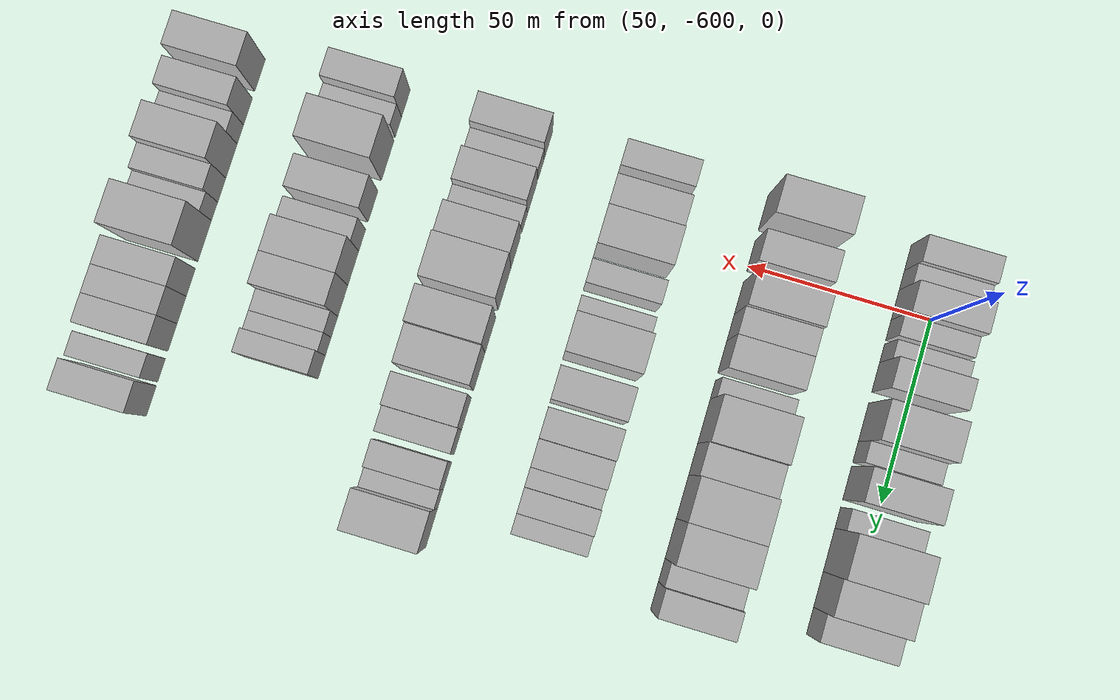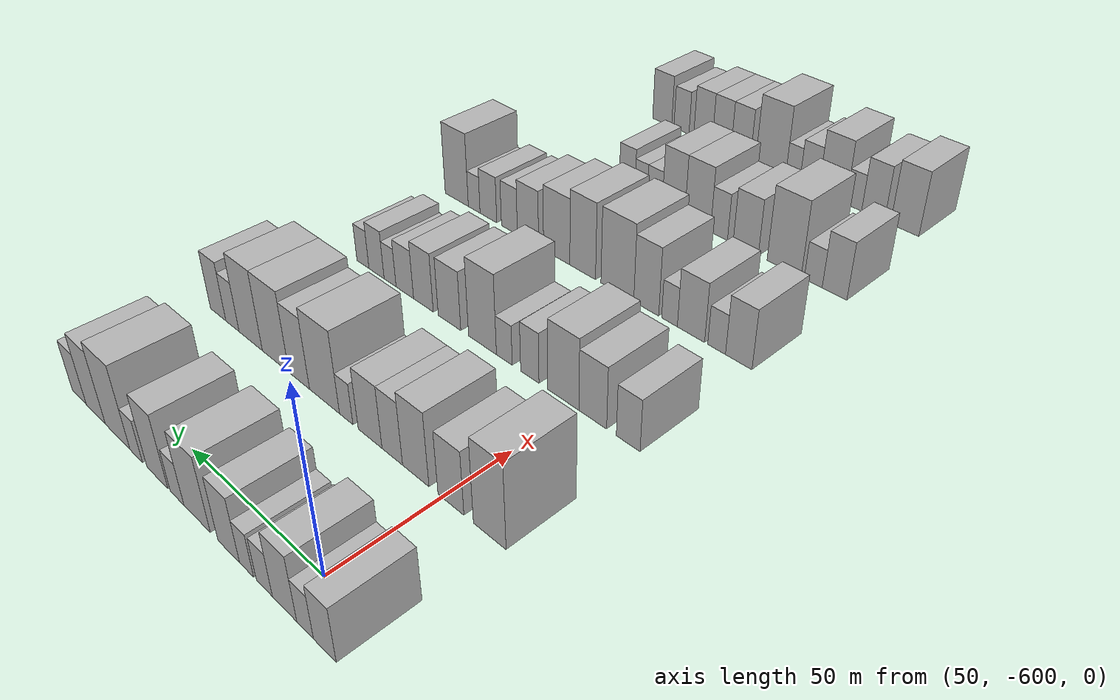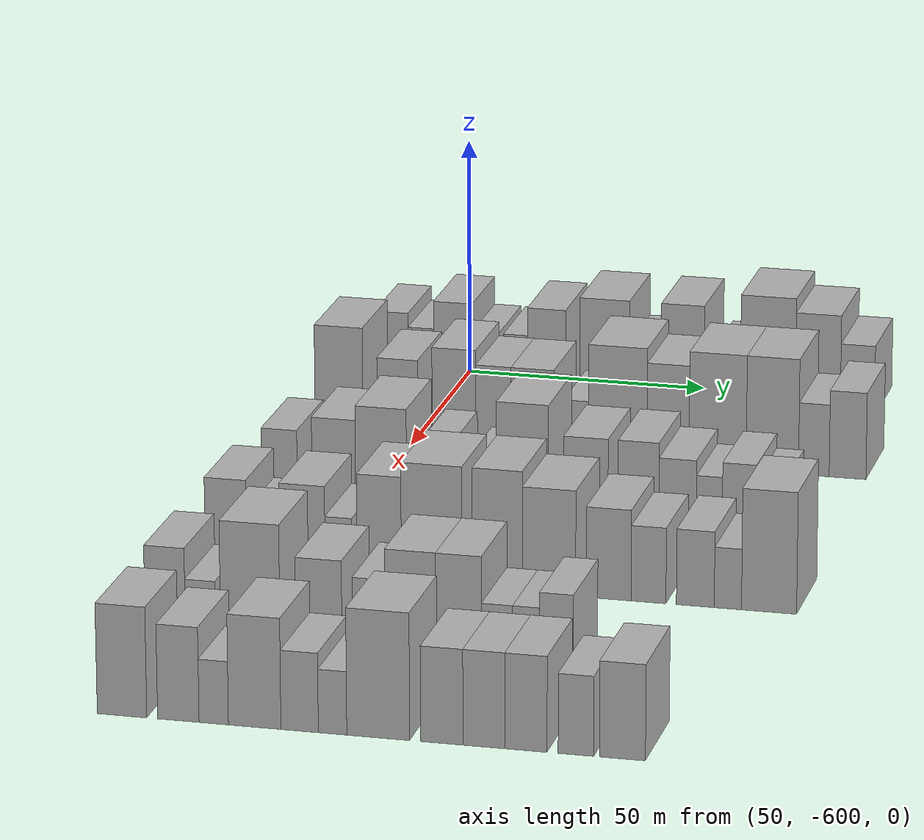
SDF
<sdf version="1.6">
 <world name="default">
  <model name="building_1">
   <static>1</static>
   <pose>50.0000 -614.4001 0 0.000000 0.000000 0.000000</pose>
   <link name="link">
    <pose>0 0 7.50 0 0 0</pose>
    <collision name="collision"><geometry><box><size>20.0000 7.1998 15.0000</size></box></geometry></collision>
    <visual name="visual">
     <cast_shadows>0</cast_shadows>
     <geometry><box><size>20.0000 7.1998 15.0000</size></box></geometry>
     <material>
      <script>
       <uri>model://HANNAS_wall/materials/scripts</uri>
       <uri>model://HANNAS_wall/materials/textures</uri>
       <name>vrc/HANNAS_wall</name>
      </script>
     </material>
    </visual>
   </link>
  </model>
  <model name="building_2">
   <static>1</static>
   <pose>50.0000 -608.0700 0 0.000000 0.000000 0.000000</pose>
   <link name="link">
    <pose>0 0 6.00 0 0 0</pose>
    <collision name="collision"><geometry><box><size>20.0000 5.4605 12.0000</size></box></geometry></collision>
    <visual name="visual">
     <cast_shadows>0</cast_shadows>
     <geometry><box><size>20.0000 5.4605 12.0000</size></box></geometry>
     <material>
      <script>
       <uri>model://HANNAS_wall/materials/scripts</uri>
       <uri>model://HANNAS_wall/materials/textures</uri>
       <name>vrc/HANNAS_wall</name>
      </script>
     </material>
    </visual>
   </link>
  </model>
  <model name="building_3">
   <static>1</static>
   <pose>50.0000 -601.2058 0 0.000000 0.000000 0.000000</pose>
   <link name="link">
    <pose>0 0 9.00 0 0 0</pose>
    <collision name="collision"><geometry><box><size>20.0000 8.2679 18.0000</size></box></geometry></collision>
    <visual name="visual">
     <cast_shadows>0</cast_shadows>
     <geometry><box><size>20.0000 8.2679 18.0000</size></box></geometry>
     <material>
      <script>
       <uri>model://HANNAS_wall/materials/scripts</uri>
       <uri>model://HANNAS_wall/materials/textures</uri>
       <name>vrc/HANNAS_wall</name>
      </script>
     </material>
    </visual>
   </link>
  </model>
  <model name="building_4">
   <static>1</static>
   <pose>50.0000 -594.2463 0 0.000000 0.000000 0.000000</pose>
   <link name="link">
    <pose>0 0 6.00 0 0 0</pose>
    <collision name="collision"><geometry><box><size>20.0000 5.6510 12.0000</size></box></geometry></collision>
    <visual name="visual">
     <cast_shadows>0</cast_shadows>
     <geometry><box><size>20.0000 5.6510 12.0000</size></box></geometry>
     <material>
      <script>
       <uri>model://HANNAS_wall/materials/scripts</uri>
       <uri>model://HANNAS_wall/materials/textures</uri>
       <name>vrc/HANNAS_wall</name>
      </script>
     </material>
    </visual>
   </link>
  </model>
  <model name="building_5">
   <static>1</static>
   <pose>50.0000 -587.8788 0 0.000000 0.000000 0.000000</pose>
   <link name="link">
    <pose>0 0 6.00 0 0 0</pose>
    <collision name="collision"><geometry><box><size>20.0000 5.0839 12.0000</size></box></geometry></collision>
    <visual name="visual">
     <cast_shadows>0</cast_shadows>
     <geometry><box><size>20.0000 5.0839 12.0000</size></box></geometry>
     <material>
      <script>
       <uri>model://HANNAS_wall/materials/scripts</uri>
       <uri>model://HANNAS_wall/materials/textures</uri>
       <name>vrc/HANNAS_wall</name>
      </script>
     </material>
    </visual>
   </link>
  </model>
  <model name="building_6">
   <static>1</static>
   <pose>50.0000 -581.2737 0 0.000000 0.000000 0.000000</pose>
   <link name="link">
    <pose>0 0 9.00 0 0 0</pose>
    <collision name="collision"><geometry><box><size>20.0000 8.1263 18.0000</size></box></geometry></collision>
    <visual name="visual">
     <cast_shadows>0</cast_shadows>
     <geometry><box><size>20.0000 8.1263 18.0000</size></box></geometry>
     <material>
      <script>
       <uri>model://HANNAS_wall/materials/scripts</uri>
       <uri>model://HANNAS_wall/materials/textures</uri>
       <name>vrc/HANNAS_wall</name>
      </script>
     </material>
    </visual>
   </link>
  </model>
  <model name="building_7">
   <static>1</static>
   <pose>50.0000 -568.9651 0 0.000000 0.000000 0.000000</pose>
   <link name="link">
    <pose>0 0 10.50 0 0 0</pose>
    <collision name="collision"><geometry><box><size>20.0000 10.4911 21.0000</size></box></geometry></collision>
    <visual name="visual">
     <cast_shadows>0</cast_shadows>
     <geometry><box><size>20.0000 10.4911 21.0000</size></box></geometry>
     <material>
      <script>
       <uri>model://HANNAS_wall/materials/scripts</uri>
       <uri>model://HANNAS_wall/materials/textures</uri>
       <name>vrc/HANNAS_wall</name>
      </script>
     </material>
    </visual>
   </link>
  </model>
  <model name="building_8">
   <static>1</static>
   <pose>50.0000 -560.8816 0 0.000000 0.000000 0.000000</pose>
   <link name="link">
    <pose>0 0 6.00 0 0 0</pose>
    <collision name="collision"><geometry><box><size>20.0000 5.6758 12.0000</size></box></geometry></collision>
    <visual name="visual">
     <cast_shadows>0</cast_shadows>
     <geometry><box><size>20.0000 5.6758 12.0000</size></box></geometry>
     <material>
      <script>
       <uri>model://HANNAS_wall/materials/scripts</uri>
       <uri>model://HANNAS_wall/materials/textures</uri>
       <name>vrc/HANNAS_wall</name>
      </script>
     </material>
    </visual>
   </link>
  </model>
  <model name="building_9">
   <static>1</static>
   <pose>50.0000 -552.5371 0 0.000000 0.000000 0.000000</pose>
   <link name="link">
    <pose>0 0 10.50 0 0 0</pose>
    <collision name="collision"><geometry><box><size>20.0000 9.0132 21.0000</size></box></geometry></collision>
    <visual name="visual">
     <cast_shadows>0</cast_shadows>
     <geometry><box><size>20.0000 9.0132 21.0000</size></box></geometry>
     <material>
      <script>
       <uri>model://HANNAS_wall/materials/scripts</uri>
       <uri>model://HANNAS_wall/materials/textures</uri>
       <name>vrc/HANNAS_wall</name>
      </script>
     </material>
    </visual>
   </link>
  </model>
  <model name="building_10">
   <static>1</static>
   <pose>50.0000 -543.2090 0 0.000000 0.000000 0.000000</pose>
   <link name="link">
    <pose>0 0 6.00 0 0 0</pose>
    <collision name="collision"><geometry><box><size>20.0000 5.6430 12.0000</size></box></geometry></collision>
    <visual name="visual">
     <cast_shadows>0</cast_shadows>
     <geometry><box><size>20.0000 5.6430 12.0000</size></box></geometry>
     <material>
      <script>
       <uri>model://HANNAS_wall/materials/scripts</uri>
       <uri>model://HANNAS_wall/materials/textures</uri>
       <name>vrc/HANNAS_wall</name>
      </script>
     </material>
    </visual>
   </link>
  </model>
  <model name="building_11">
   <static>1</static>
   <pose>50.0000 -534.6300 0 0.000000 0.000000 0.000000</pose>
   <link name="link">
    <pose>0 0 12.00 0 0 0</pose>
    <collision name="collision"><geometry><box><size>20.0000 11.5151 24.0000</size></box></geometry></collision>
    <visual name="visual">
     <cast_shadows>0</cast_shadows>
     <geometry><box><size>20.0000 11.5151 24.0000</size></box></geometry>
     <material>
      <script>
       <uri>model://HANNAS_wall/materials/scripts</uri>
       <uri>model://HANNAS_wall/materials/textures</uri>
       <name>vrc/HANNAS_wall</name>
      </script>
     </material>
    </visual>
   </link>
  </model>
  <model name="building_12">
   <static>1</static>
   <pose>50.0000 -524.1794 0 0.000000 0.000000 0.000000</pose>
   <link name="link">
    <pose>0 0 10.50 0 0 0</pose>
    <collision name="collision"><geometry><box><size>20.0000 9.3861 21.0000</size></box></geometry></collision>
    <visual name="visual">
     <cast_shadows>0</cast_shadows>
     <geometry><box><size>20.0000 9.3861 21.0000</size></box></geometry>
     <material>
      <script>
       <uri>model://HANNAS_wall/materials/scripts</uri>
       <uri>model://HANNAS_wall/materials/textures</uri>
       <name>vrc/HANNAS_wall</name>
      </script>
     </material>
    </visual>
   </link>
  </model>
  <model name="building_13">
   <static>1</static>
   <pose>50.0000 -515.9298 0 0.000000 0.000000 0.000000</pose>
   <link name="link">
    <pose>0 0 7.50 0 0 0</pose>
    <collision name="collision"><geometry><box><size>20.0000 7.1131 15.0000</size></box></geometry></collision>
    <visual name="visual">
     <cast_shadows>0</cast_shadows>
     <geometry><box><size>20.0000 7.1131 15.0000</size></box></geometry>
     <material>
      <script>
       <uri>model://HANNAS_wall/materials/scripts</uri>
       <uri>model://HANNAS_wall/materials/textures</uri>
       <name>vrc/HANNAS_wall</name>
      </script>
     </material>
    </visual>
   </link>
  </model>
  <model name="building_142">
   <static>1</static>
   <pose>90.0000 -615.0041 0 0.000000 0.000000 0.000000</pose>
   <link name="link">
    <pose>0 0 12.00 0 0 0</pose>
    <collision name="collision"><geometry><box><size>20.0000 9.9919 24.0000</size></box></geometry></collision>
    <visual name="visual">
     <cast_shadows>0</cast_shadows>
     <geometry><box><size>20.0000 9.9919 24.0000</size></box></geometry>
     <material>
      <script>
       <uri>model://HANNAS_wall/materials/scripts</uri>
       <uri>model://HANNAS_wall/materials/textures</uri>
       <name>vrc/HANNAS_wall</name>
      </script>
     </material>
    </visual>
   </link>
  </model>
  <model name="building_143">
   <static>1</static>
   <pose>90.0000 -602.7949 0 0.000000 0.000000 0.000000</pose>
   <link name="link">
    <pose>0 0 9.00 0 0 0</pose>
    <collision name="collision"><geometry><box><size>20.0000 8.4265 18.0000</size></box></geometry></collision>
    <visual name="visual">
     <cast_shadows>0</cast_shadows>
     <geometry><box><size>20.0000 8.4265 18.0000</size></box></geometry>
     <material>
      <script>
       <uri>model://HANNAS_wall/materials/scripts</uri>
       <uri>model://HANNAS_wall/materials/textures</uri>
       <name>vrc/HANNAS_wall</name>
      </script>
     </material>
    </visual>
   </link>
  </model>
  <model name="building_144">
   <static>1</static>
   <pose>90.0000 -591.0546 0 0.000000 0.000000 0.000000</pose>
   <link name="link">
    <pose>0 0 10.50 0 0 0</pose>
    <collision name="collision"><geometry><box><size>20.0000 9.0541 21.0000</size></box></geometry></collision>
    <visual name="visual">
     <cast_shadows>0</cast_shadows>
     <geometry><box><size>20.0000 9.0541 21.0000</size></box></geometry>
     <material>
      <script>
       <uri>model://HANNAS_wall/materials/scripts</uri>
       <uri>model://HANNAS_wall/materials/textures</uri>
       <name>vrc/HANNAS_wall</name>
      </script>
     </material>
    </visual>
   </link>
  </model>
  <model name="building_145">
   <static>1</static>
   <pose>90.0000 -582.8657 0 0.000000 0.000000 0.000000</pose>
   <link name="link">
    <pose>0 0 9.00 0 0 0</pose>
    <collision name="collision"><geometry><box><size>20.0000 7.3236 18.0000</size></box></geometry></collision>
    <visual name="visual">
     <cast_shadows>0</cast_shadows>
     <geometry><box><size>20.0000 7.3236 18.0000</size></box></geometry>
     <material>
      <script>
       <uri>model://HANNAS_wall/materials/scripts</uri>
       <uri>model://HANNAS_wall/materials/textures</uri>
       <name>vrc/HANNAS_wall</name>
      </script>
     </material>
    </visual>
   </link>
  </model>
  <model name="building_146">
   <static>1</static>
   <pose>90.0000 -574.8054 0 0.000000 0.000000 0.000000</pose>
   <link name="link">
    <pose>0 0 9.00 0 0 0</pose>
    <collision name="collision"><geometry><box><size>20.0000 8.7971 18.0000</size></box></geometry></collision>
    <visual name="visual">
     <cast_shadows>0</cast_shadows>
     <geometry><box><size>20.0000 8.7971 18.0000</size></box></geometry>
     <material>
      <script>
       <uri>model://HANNAS_wall/materials/scripts</uri>
       <uri>model://HANNAS_wall/materials/textures</uri>
       <name>vrc/HANNAS_wall</name>
      </script>
     </material>
    </visual>
   </link>
  </model>
  <model name="building_147">
   <static>1</static>
   <pose>90.0000 -565.8265 0 0.000000 0.000000 0.000000</pose>
   <link name="link">
    <pose>0 0 6.00 0 0 0</pose>
    <collision name="collision"><geometry><box><size>20.0000 5.1607 12.0000</size></box></geometry></collision>
    <visual name="visual">
     <cast_shadows>0</cast_shadows>
     <geometry><box><size>20.0000 5.1607 12.0000</size></box></geometry>
     <material>
      <script>
       <uri>model://HANNAS_wall/materials/scripts</uri>
       <uri>model://HANNAS_wall/materials/textures</uri>
       <name>vrc/HANNAS_wall</name>
      </script>
     </material>
    </visual>
   </link>
  </model>
  <model name="building_148">
   <static>1</static>
   <pose>90.0000 -557.2463 0 0.000000 0.000000 0.000000</pose>
   <link name="link">
    <pose>0 0 12.00 0 0 0</pose>
    <collision name="collision"><geometry><box><size>20.0000 11.9997 24.0000</size></box></geometry></collision>
    <visual name="visual">
     <cast_shadows>0</cast_shadows>
     <geometry><box><size>20.0000 11.9997 24.0000</size></box></geometry>
     <material>
      <script>
       <uri>model://HANNAS_wall/materials/scripts</uri>
       <uri>model://HANNAS_wall/materials/textures</uri>
       <name>vrc/HANNAS_wall</name>
      </script>
     </material>
    </visual>
   </link>
  </model>
  <model name="building_149">
   <static>1</static>
   <pose>90.0000 -546.9539 0 0.000000 0.000000 0.000000</pose>
   <link name="link">
    <pose>0 0 10.50 0 0 0</pose>
    <collision name="collision"><geometry><box><size>20.0000 8.5851 21.0000</size></box></geometry></collision>
    <visual name="visual">
     <cast_shadows>0</cast_shadows>
     <geometry><box><size>20.0000 8.5851 21.0000</size></box></geometry>
     <material>
      <script>
       <uri>model://HANNAS_wall/materials/scripts</uri>
       <uri>model://HANNAS_wall/materials/textures</uri>
       <name>vrc/HANNAS_wall</name>
      </script>
     </material>
    </visual>
   </link>
  </model>
  <model name="building_150">
   <static>1</static>
   <pose>90.0000 -536.8525 0 0.000000 0.000000 0.000000</pose>
   <link name="link">
    <pose>0 0 12.00 0 0 0</pose>
    <collision name="collision"><geometry><box><size>20.0000 11.6178 24.0000</size></box></geometry></collision>
    <visual name="visual">
     <cast_shadows>0</cast_shadows>
     <geometry><box><size>20.0000 11.6178 24.0000</size></box></geometry>
     <material>
      <script>
       <uri>model://HANNAS_wall/materials/scripts</uri>
       <uri>model://HANNAS_wall/materials/textures</uri>
       <name>vrc/HANNAS_wall</name>
      </script>
     </material>
    </visual>
   </link>
  </model>
  <model name="building_151">
   <static>1</static>
   <pose>90.0000 -525.7332 0 0.000000 0.000000 0.000000</pose>
   <link name="link">
    <pose>0 0 12.00 0 0 0</pose>
    <collision name="collision"><geometry><box><size>20.0000 10.6209 24.0000</size></box></geometry></collision>
    <visual name="visual">
     <cast_shadows>0</cast_shadows>
     <geometry><box><size>20.0000 10.6209 24.0000</size></box></geometry>
     <material>
      <script>
       <uri>model://HANNAS_wall/materials/scripts</uri>
       <uri>model://HANNAS_wall/materials/textures</uri>
       <name>vrc/HANNAS_wall</name>
      </script>
     </material>
    </visual>
   </link>
  </model>
  <model name="building_152">
   <static>1</static>
   <pose>90.0000 -517.3188 0 0.000000 0.000000 0.000000</pose>
   <link name="link">
    <pose>0 0 7.50 0 0 0</pose>
    <collision name="collision"><geometry><box><size>20.0000 6.2080 15.0000</size></box></geometry></collision>
    <visual name="visual">
     <cast_shadows>0</cast_shadows>
     <geometry><box><size>20.0000 6.2080 15.0000</size></box></geometry>
     <material>
      <script>
       <uri>model://HANNAS_wall/materials/scripts</uri>
       <uri>model://HANNAS_wall/materials/textures</uri>
       <name>vrc/HANNAS_wall</name>
      </script>
     </material>
    </visual>
   </link>
  </model>
  <model name="building_153">
   <static>1</static>
   <pose>90.0000 -510.4953 0 0.000000 0.000000 0.000000</pose>
   <link name="link">
    <pose>0 0 9.00 0 0 0</pose>
    <collision name="collision"><geometry><box><size>20.0000 7.4389 18.0000</size></box></geometry></collision>
    <visual name="visual">
     <cast_shadows>0</cast_shadows>
     <geometry><box><size>20.0000 7.4389 18.0000</size></box></geometry>
     <material>
      <script>
       <uri>model://HANNAS_wall/materials/scripts</uri>
       <uri>model://HANNAS_wall/materials/textures</uri>
       <name>vrc/HANNAS_wall</name>
      </script>
     </material>
    </visual>
   </link>
  </model>
  <model name="building_278">
   <static>1</static>
   <pose>130.0000 -616.3946 0 0.000000 0.000000 0.000000</pose>
   <link name="link">
    <pose>0 0 7.50 0 0 0</pose>
    <collision name="collision"><geometry><box><size>20.0000 7.2108 15.0000</size></box></geometry></collision>
    <visual name="visual">
     <cast_shadows>0</cast_shadows>
     <geometry><box><size>20.0000 7.2108 15.0000</size></box></geometry>
     <material>
      <script>
       <uri>model://HANNAS_wall/materials/scripts</uri>
       <uri>model://HANNAS_wall/materials/textures</uri>
       <name>vrc/HANNAS_wall</name>
      </script>
     </material>
    </visual>
   </link>
  </model>
  <model name="building_279">
   <static>1</static>
   <pose>130.0000 -605.3771 0 0.000000 0.000000 0.000000</pose>
   <link name="link">
    <pose>0 0 9.00 0 0 0</pose>
    <collision name="collision"><geometry><box><size>20.0000 8.8242 18.0000</size></box></geometry></collision>
    <visual name="visual">
     <cast_shadows>0</cast_shadows>
     <geometry><box><size>20.0000 8.8242 18.0000</size></box></geometry>
     <material>
      <script>
       <uri>model://HANNAS_wall/materials/scripts</uri>
       <uri>model://HANNAS_wall/materials/textures</uri>
       <name>vrc/HANNAS_wall</name>
      </script>
     </material>
    </visual>
   </link>
  </model>
  <model name="building_280">
   <static>1</static>
   <pose>130.0000 -595.8070 0 0.000000 0.000000 0.000000</pose>
   <link name="link">
    <pose>0 0 10.50 0 0 0</pose>
    <collision name="collision"><geometry><box><size>20.0000 10.3159 21.0000</size></box></geometry></collision>
    <visual name="visual">
     <cast_shadows>0</cast_shadows>
     <geometry><box><size>20.0000 10.3159 21.0000</size></box></geometry>
     <material>
      <script>
       <uri>model://HANNAS_wall/materials/scripts</uri>
       <uri>model://HANNAS_wall/materials/textures</uri>
       <name>vrc/HANNAS_wall</name>
      </script>
     </material>
    </visual>
   </link>
  </model>
  <model name="building_281">
   <static>1</static>
   <pose>130.0000 -584.4604 0 0.000000 0.000000 0.000000</pose>
   <link name="link">
    <pose>0 0 7.50 0 0 0</pose>
    <collision name="collision"><geometry><box><size>20.0000 6.3774 15.0000</size></box></geometry></collision>
    <visual name="visual">
     <cast_shadows>0</cast_shadows>
     <geometry><box><size>20.0000 6.3774 15.0000</size></box></geometry>
     <material>
      <script>
       <uri>model://HANNAS_wall/materials/scripts</uri>
       <uri>model://HANNAS_wall/materials/textures</uri>
       <name>vrc/HANNAS_wall</name>
      </script>
     </material>
    </visual>
   </link>
  </model>
  <model name="building_282">
   <static>1</static>
   <pose>130.0000 -575.4166 0 0.000000 0.000000 0.000000</pose>
   <link name="link">
    <pose>0 0 6.00 0 0 0</pose>
    <collision name="collision"><geometry><box><size>20.0000 5.7101 12.0000</size></box></geometry></collision>
    <visual name="visual">
     <cast_shadows>0</cast_shadows>
     <geometry><box><size>20.0000 5.7101 12.0000</size></box></geometry>
     <material>
      <script>
       <uri>model://HANNAS_wall/materials/scripts</uri>
       <uri>model://HANNAS_wall/materials/textures</uri>
       <name>vrc/HANNAS_wall</name>
      </script>
     </material>
    </visual>
   </link>
  </model>
  <model name="building_283">
   <static>1</static>
   <pose>130.0000 -567.3604 0 0.000000 0.000000 0.000000</pose>
   <link name="link">
    <pose>0 0 12.00 0 0 0</pose>
    <collision name="collision"><geometry><box><size>20.0000 10.4022 24.0000</size></box></geometry></collision>
    <visual name="visual">
     <cast_shadows>0</cast_shadows>
     <geometry><box><size>20.0000 10.4022 24.0000</size></box></geometry>
     <material>
      <script>
       <uri>model://HANNAS_wall/materials/scripts</uri>
       <uri>model://HANNAS_wall/materials/textures</uri>
       <name>vrc/HANNAS_wall</name>
      </script>
     </material>
    </visual>
   </link>
  </model>
  <model name="building_284">
   <static>1</static>
   <pose>130.0000 -554.7339 0 0.000000 0.000000 0.000000</pose>
   <link name="link">
    <pose>0 0 9.00 0 0 0</pose>
    <collision name="collision"><geometry><box><size>20.0000 8.8509 18.0000</size></box></geometry></collision>
    <visual name="visual">
     <cast_shadows>0</cast_shadows>
     <geometry><box><size>20.0000 8.8509 18.0000</size></box></geometry>
     <material>
      <script>
       <uri>model://HANNAS_wall/materials/scripts</uri>
       <uri>model://HANNAS_wall/materials/textures</uri>
       <name>vrc/HANNAS_wall</name>
      </script>
     </material>
    </visual>
   </link>
  </model>
  <model name="building_285">
   <static>1</static>
   <pose>130.0000 -544.2658 0 0.000000 0.000000 0.000000</pose>
   <link name="link">
    <pose>0 0 9.00 0 0 0</pose>
    <collision name="collision"><geometry><box><size>20.0000 8.0853 18.0000</size></box></geometry></collision>
    <visual name="visual">
     <cast_shadows>0</cast_shadows>
     <geometry><box><size>20.0000 8.0853 18.0000</size></box></geometry>
     <material>
      <script>
       <uri>model://HANNAS_wall/materials/scripts</uri>
       <uri>model://HANNAS_wall/materials/textures</uri>
       <name>vrc/HANNAS_wall</name>
      </script>
     </material>
    </visual>
   </link>
  </model>
  <model name="building_286">
   <static>1</static>
   <pose>130.0000 -536.5265 0 0.000000 0.000000 0.000000</pose>
   <link name="link">
    <pose>0 0 7.50 0 0 0</pose>
    <collision name="collision"><geometry><box><size>20.0000 7.3934 15.0000</size></box></geometry></collision>
    <visual name="visual">
     <cast_shadows>0</cast_shadows>
     <geometry><box><size>20.0000 7.3934 15.0000</size></box></geometry>
     <material>
      <script>
       <uri>model://HANNAS_wall/materials/scripts</uri>
       <uri>model://HANNAS_wall/materials/textures</uri>
       <name>vrc/HANNAS_wall</name>
      </script>
     </material>
    </visual>
   </link>
  </model>
  <model name="building_287">
   <static>1</static>
   <pose>130.0000 -530.2504 0 0.000000 0.000000 0.000000</pose>
   <link name="link">
    <pose>0 0 6.00 0 0 0</pose>
    <collision name="collision"><geometry><box><size>20.0000 5.1588 12.0000</size></box></geometry></collision>
    <visual name="visual">
     <cast_shadows>0</cast_shadows>
     <geometry><box><size>20.0000 5.1588 12.0000</size></box></geometry>
     <material>
      <script>
       <uri>model://HANNAS_wall/materials/scripts</uri>
       <uri>model://HANNAS_wall/materials/textures</uri>
       <name>vrc/HANNAS_wall</name>
      </script>
     </material>
    </visual>
   </link>
  </model>
  <model name="building_288">
   <static>1</static>
   <pose>130.0000 -524.3204 0 0.000000 0.000000 0.000000</pose>
   <link name="link">
    <pose>0 0 7.50 0 0 0</pose>
    <collision name="collision"><geometry><box><size>20.0000 6.7013 15.0000</size></box></geometry></collision>
    <visual name="visual">
     <cast_shadows>0</cast_shadows>
     <geometry><box><size>20.0000 6.7013 15.0000</size></box></geometry>
     <material>
      <script>
       <uri>model://HANNAS_wall/materials/scripts</uri>
       <uri>model://HANNAS_wall/materials/textures</uri>
       <name>vrc/HANNAS_wall</name>
      </script>
     </material>
    </visual>
   </link>
  </model>
  <model name="building_289">
   <static>1</static>
   <pose>130.0000 -518.2611 0 0.000000 0.000000 0.000000</pose>
   <link name="link">
    <pose>0 0 6.00 0 0 0</pose>
    <collision name="collision"><geometry><box><size>20.0000 5.4174 12.0000</size></box></geometry></collision>
    <visual name="visual">
     <cast_shadows>0</cast_shadows>
     <geometry><box><size>20.0000 5.4174 12.0000</size></box></geometry>
     <material>
      <script>
       <uri>model://HANNAS_wall/materials/scripts</uri>
       <uri>model://HANNAS_wall/materials/textures</uri>
       <name>vrc/HANNAS_wall</name>
      </script>
     </material>
    </visual>
   </link>
  </model>
  <model name="building_407">
   <static>1</static>
   <pose>170.0000 -615.9316 0 0.000000 0.000000 0.000000</pose>
   <link name="link">
    <pose>0 0 9.00 0 0 0</pose>
    <collision name="collision"><geometry><box><size>20.0000 8.1367 18.0000</size></box></geometry></collision>
    <visual name="visual">
     <cast_shadows>0</cast_shadows>
     <geometry><box><size>20.0000 8.1367 18.0000</size></box></geometry>
     <material>
      <script>
       <uri>model://HANNAS_wall/materials/scripts</uri>
       <uri>model://HANNAS_wall/materials/textures</uri>
       <name>vrc/HANNAS_wall</name>
      </script>
     </material>
    </visual>
   </link>
  </model>
  <model name="building_408">
   <static>1</static>
   <pose>170.0000 -609.0600 0 0.000000 0.000000 0.000000</pose>
   <link name="link">
    <pose>0 0 6.00 0 0 0</pose>
    <collision name="collision"><geometry><box><size>20.0000 5.6067 12.0000</size></box></geometry></collision>
    <visual name="visual">
     <cast_shadows>0</cast_shadows>
     <geometry><box><size>20.0000 5.6067 12.0000</size></box></geometry>
     <material>
      <script>
       <uri>model://HANNAS_wall/materials/scripts</uri>
       <uri>model://HANNAS_wall/materials/textures</uri>
       <name>vrc/HANNAS_wall</name>
      </script>
     </material>
    </visual>
   </link>
  </model>
  <model name="building_409">
   <static>1</static>
   <pose>170.0000 -600.8036 0 0.000000 0.000000 0.000000</pose>
   <link name="link">
    <pose>0 0 9.00 0 0 0</pose>
    <collision name="collision"><geometry><box><size>20.0000 8.9061 18.0000</size></box></geometry></collision>
    <visual name="visual">
     <cast_shadows>0</cast_shadows>
     <geometry><box><size>20.0000 8.9061 18.0000</size></box></geometry>
     <material>
      <script>
       <uri>model://HANNAS_wall/materials/scripts</uri>
       <uri>model://HANNAS_wall/materials/textures</uri>
       <name>vrc/HANNAS_wall</name>
      </script>
     </material>
    </visual>
   </link>
  </model>
  <model name="building_410">
   <static>1</static>
   <pose>170.0000 -593.7107 0 0.000000 0.000000 0.000000</pose>
   <link name="link">
    <pose>0 0 6.00 0 0 0</pose>
    <collision name="collision"><geometry><box><size>20.0000 5.2797 12.0000</size></box></geometry></collision>
    <visual name="visual">
     <cast_shadows>0</cast_shadows>
     <geometry><box><size>20.0000 5.2797 12.0000</size></box></geometry>
     <material>
      <script>
       <uri>model://HANNAS_wall/materials/scripts</uri>
       <uri>model://HANNAS_wall/materials/textures</uri>
       <name>vrc/HANNAS_wall</name>
      </script>
     </material>
    </visual>
   </link>
  </model>
  <model name="building_411">
   <static>1</static>
   <pose>170.0000 -585.7439 0 0.000000 0.000000 0.000000</pose>
   <link name="link">
    <pose>0 0 10.50 0 0 0</pose>
    <collision name="collision"><geometry><box><size>20.0000 8.6539 21.0000</size></box></geometry></collision>
    <visual name="visual">
     <cast_shadows>0</cast_shadows>
     <geometry><box><size>20.0000 8.6539 21.0000</size></box></geometry>
     <material>
      <script>
       <uri>model://HANNAS_wall/materials/scripts</uri>
       <uri>model://HANNAS_wall/materials/textures</uri>
       <name>vrc/HANNAS_wall</name>
      </script>
     </material>
    </visual>
   </link>
  </model>
  <model name="building_412">
   <static>1</static>
   <pose>170.0000 -575.5004 0 0.000000 0.000000 0.000000</pose>
   <link name="link">
    <pose>0 0 12.00 0 0 0</pose>
    <collision name="collision"><geometry><box><size>20.0000 11.8331 24.0000</size></box></geometry></collision>
    <visual name="visual">
     <cast_shadows>0</cast_shadows>
     <geometry><box><size>20.0000 11.8331 24.0000</size></box></geometry>
     <material>
      <script>
       <uri>model://HANNAS_wall/materials/scripts</uri>
       <uri>model://HANNAS_wall/materials/textures</uri>
       <name>vrc/HANNAS_wall</name>
      </script>
     </material>
    </visual>
   </link>
  </model>
  <model name="building_413">
   <static>1</static>
   <pose>170.0000 -562.7300 0 0.000000 0.000000 0.000000</pose>
   <link name="link">
    <pose>0 0 12.00 0 0 0</pose>
    <collision name="collision"><geometry><box><size>20.0000 9.7076 24.0000</size></box></geometry></collision>
    <visual name="visual">
     <cast_shadows>0</cast_shadows>
     <geometry><box><size>20.0000 9.7076 24.0000</size></box></geometry>
     <material>
      <script>
       <uri>model://HANNAS_wall/materials/scripts</uri>
       <uri>model://HANNAS_wall/materials/textures</uri>
       <name>vrc/HANNAS_wall</name>
      </script>
     </material>
    </visual>
   </link>
  </model>
  <model name="building_414">
   <static>1</static>
   <pose>170.0000 -552.7162 0 0.000000 0.000000 0.000000</pose>
   <link name="link">
    <pose>0 0 10.50 0 0 0</pose>
    <collision name="collision"><geometry><box><size>20.0000 10.3201 21.0000</size></box></geometry></collision>
    <visual name="visual">
     <cast_shadows>0</cast_shadows>
     <geometry><box><size>20.0000 10.3201 21.0000</size></box></geometry>
     <material>
      <script>
       <uri>model://HANNAS_wall/materials/scripts</uri>
       <uri>model://HANNAS_wall/materials/textures</uri>
       <name>vrc/HANNAS_wall</name>
      </script>
     </material>
    </visual>
   </link>
  </model>
  <model name="building_415">
   <static>1</static>
   <pose>170.0000 -541.2158 0 0.000000 0.000000 0.000000</pose>
   <link name="link">
    <pose>0 0 9.00 0 0 0</pose>
    <collision name="collision"><geometry><box><size>20.0000 8.6806 18.0000</size></box></geometry></collision>
    <visual name="visual">
     <cast_shadows>0</cast_shadows>
     <geometry><box><size>20.0000 8.6806 18.0000</size></box></geometry>
     <material>
      <script>
       <uri>model://HANNAS_wall/materials/scripts</uri>
       <uri>model://HANNAS_wall/materials/textures</uri>
       <name>vrc/HANNAS_wall</name>
      </script>
     </material>
    </visual>
   </link>
  </model>
  <model name="building_416">
   <static>1</static>
   <pose>170.0000 -533.5246 0 0.000000 0.000000 0.000000</pose>
   <link name="link">
    <pose>0 0 7.50 0 0 0</pose>
    <collision name="collision"><geometry><box><size>20.0000 6.7018 15.0000</size></box></geometry></collision>
    <visual name="visual">
     <cast_shadows>0</cast_shadows>
     <geometry><box><size>20.0000 6.7018 15.0000</size></box></geometry>
     <material>
      <script>
       <uri>model://HANNAS_wall/materials/scripts</uri>
       <uri>model://HANNAS_wall/materials/textures</uri>
       <name>vrc/HANNAS_wall</name>
      </script>
     </material>
    </visual>
   </link>
  </model>
  <model name="building_417">
   <static>1</static>
   <pose>170.0000 -524.5462 0 0.000000 0.000000 0.000000</pose>
   <link name="link">
    <pose>0 0 7.50 0 0 0</pose>
    <collision name="collision"><geometry><box><size>20.0000 7.2549 15.0000</size></box></geometry></collision>
    <visual name="visual">
     <cast_shadows>0</cast_shadows>
     <geometry><box><size>20.0000 7.2549 15.0000</size></box></geometry>
     <material>
      <script>
       <uri>model://HANNAS_wall/materials/scripts</uri>
       <uri>model://HANNAS_wall/materials/textures</uri>
       <name>vrc/HANNAS_wall</name>
      </script>
     </material>
    </visual>
   </link>
  </model>
  <model name="building_418">
   <static>1</static>
   <pose>170.0000 -518.3212 0 0.000000 0.000000 0.000000</pose>
   <link name="link">
    <pose>0 0 6.00 0 0 0</pose>
    <collision name="collision"><geometry><box><size>20.0000 5.1952 12.0000</size></box></geometry></collision>
    <visual name="visual">
     <cast_shadows>0</cast_shadows>
     <geometry><box><size>20.0000 5.1952 12.0000</size></box></geometry>
     <material>
      <script>
       <uri>model://HANNAS_wall/materials/scripts</uri>
       <uri>model://HANNAS_wall/materials/textures</uri>
       <name>vrc/HANNAS_wall</name>
      </script>
     </material>
    </visual>
   </link>
  </model>
  <model name="building_419">
   <static>1</static>
   <pose>170.0000 -510.4748 0 0.000000 0.000000 0.000000</pose>
   <link name="link">
    <pose>0 0 12.00 0 0 0</pose>
    <collision name="collision"><geometry><box><size>20.0000 10.4976 24.0000</size></box></geometry></collision>
    <visual name="visual">
     <cast_shadows>0</cast_shadows>
     <geometry><box><size>20.0000 10.4976 24.0000</size></box></geometry>
     <material>
      <script>
       <uri>model://HANNAS_wall/materials/scripts</uri>
       <uri>model://HANNAS_wall/materials/textures</uri>
       <name>vrc/HANNAS_wall</name>
      </script>
     </material>
    </visual>
   </link>
  </model>
  <model name="building_532">
   <static>1</static>
   <pose>210.0000 -616.1358 0 0.000000 0.000000 0.000000</pose>
   <link name="link">
    <pose>0 0 9.00 0 0 0</pose>
    <collision name="collision"><geometry><box><size>20.0000 7.7285 18.0000</size></box></geometry></collision>
    <visual name="visual">
     <cast_shadows>0</cast_shadows>
     <geometry><box><size>20.0000 7.7285 18.0000</size></box></geometry>
     <material>
      <script>
       <uri>model://HANNAS_wall/materials/scripts</uri>
       <uri>model://HANNAS_wall/materials/textures</uri>
       <name>vrc/HANNAS_wall</name>
      </script>
     </material>
    </visual>
   </link>
  </model>
  <model name="building_533">
   <static>1</static>
   <pose>210.0000 -609.3839 0 0.000000 0.000000 0.000000</pose>
   <link name="link">
    <pose>0 0 6.00 0 0 0</pose>
    <collision name="collision"><geometry><box><size>20.0000 5.7753 12.0000</size></box></geometry></collision>
    <visual name="visual">
     <cast_shadows>0</cast_shadows>
     <geometry><box><size>20.0000 5.7753 12.0000</size></box></geometry>
     <material>
      <script>
       <uri>model://HANNAS_wall/materials/scripts</uri>
       <uri>model://HANNAS_wall/materials/textures</uri>
       <name>vrc/HANNAS_wall</name>
      </script>
     </material>
    </visual>
   </link>
  </model>
  <model name="building_534">
   <static>1</static>
   <pose>210.0000 -599.8304 0 0.000000 0.000000 0.000000</pose>
   <link name="link">
    <pose>0 0 12.00 0 0 0</pose>
    <collision name="collision"><geometry><box><size>20.0000 11.3317 24.0000</size></box></geometry></collision>
    <visual name="visual">
     <cast_shadows>0</cast_shadows>
     <geometry><box><size>20.0000 11.3317 24.0000</size></box></geometry>
     <material>
      <script>
       <uri>model://HANNAS_wall/materials/scripts</uri>
       <uri>model://HANNAS_wall/materials/textures</uri>
       <name>vrc/HANNAS_wall</name>
      </script>
     </material>
    </visual>
   </link>
  </model>
  <model name="building_535">
   <static>1</static>
   <pose>210.0000 -586.7701 0 0.000000 0.000000 0.000000</pose>
   <link name="link">
    <pose>0 0 9.00 0 0 0</pose>
    <collision name="collision"><geometry><box><size>20.0000 8.7889 18.0000</size></box></geometry></collision>
    <visual name="visual">
     <cast_shadows>0</cast_shadows>
     <geometry><box><size>20.0000 8.7889 18.0000</size></box></geometry>
     <material>
      <script>
       <uri>model://HANNAS_wall/materials/scripts</uri>
       <uri>model://HANNAS_wall/materials/textures</uri>
       <name>vrc/HANNAS_wall</name>
      </script>
     </material>
    </visual>
   </link>
  </model>
  <model name="building_536">
   <static>1</static>
   <pose>210.0000 -577.2993 0 0.000000 0.000000 0.000000</pose>
   <link name="link">
    <pose>0 0 7.50 0 0 0</pose>
    <collision name="collision"><geometry><box><size>20.0000 6.1528 15.0000</size></box></geometry></collision>
    <visual name="visual">
     <cast_shadows>0</cast_shadows>
     <geometry><box><size>20.0000 6.1528 15.0000</size></box></geometry>
     <material>
      <script>
       <uri>model://HANNAS_wall/materials/scripts</uri>
       <uri>model://HANNAS_wall/materials/textures</uri>
       <name>vrc/HANNAS_wall</name>
      </script>
     </material>
    </visual>
   </link>
  </model>
  <model name="building_537">
   <static>1</static>
   <pose>210.0000 -569.4276 0 0.000000 0.000000 0.000000</pose>
   <link name="link">
    <pose>0 0 10.50 0 0 0</pose>
    <collision name="collision"><geometry><box><size>20.0000 9.5905 21.0000</size></box></geometry></collision>
    <visual name="visual">
     <cast_shadows>0</cast_shadows>
     <geometry><box><size>20.0000 9.5905 21.0000</size></box></geometry>
     <material>
      <script>
       <uri>model://HANNAS_wall/materials/scripts</uri>
       <uri>model://HANNAS_wall/materials/textures</uri>
       <name>vrc/HANNAS_wall</name>
      </script>
     </material>
    </visual>
   </link>
  </model>
  <model name="building_538">
   <static>1</static>
   <pose>210.0000 -560.3265 0 0.000000 0.000000 0.000000</pose>
   <link name="link">
    <pose>0 0 10.50 0 0 0</pose>
    <collision name="collision"><geometry><box><size>20.0000 8.6117 21.0000</size></box></geometry></collision>
    <visual name="visual">
     <cast_shadows>0</cast_shadows>
     <geometry><box><size>20.0000 8.6117 21.0000</size></box></geometry>
     <material>
      <script>
       <uri>model://HANNAS_wall/materials/scripts</uri>
       <uri>model://HANNAS_wall/materials/textures</uri>
       <name>vrc/HANNAS_wall</name>
      </script>
     </material>
    </visual>
   </link>
  </model>
  <model name="building_539">
   <static>1</static>
   <pose>210.0000 -553.1004 0 0.000000 0.000000 0.000000</pose>
   <link name="link">
    <pose>0 0 6.00 0 0 0</pose>
    <collision name="collision"><geometry><box><size>20.0000 5.8405 12.0000</size></box></geometry></collision>
    <visual name="visual">
     <cast_shadows>0</cast_shadows>
     <geometry><box><size>20.0000 5.8405 12.0000</size></box></geometry>
     <material>
      <script>
       <uri>model://HANNAS_wall/materials/scripts</uri>
       <uri>model://HANNAS_wall/materials/textures</uri>
       <name>vrc/HANNAS_wall</name>
      </script>
     </material>
    </visual>
   </link>
  </model>
  <model name="building_540">
   <static>1</static>
   <pose>210.0000 -547.6730 0 0.000000 0.000000 0.000000</pose>
   <link name="link">
    <pose>0 0 6.00 0 0 0</pose>
    <collision name="collision"><geometry><box><size>20.0000 5.0144 12.0000</size></box></geometry></collision>
    <visual name="visual">
     <cast_shadows>0</cast_shadows>
     <geometry><box><size>20.0000 5.0144 12.0000</size></box></geometry>
     <material>
      <script>
       <uri>model://HANNAS_wall/materials/scripts</uri>
       <uri>model://HANNAS_wall/materials/textures</uri>
       <name>vrc/HANNAS_wall</name>
      </script>
     </material>
    </visual>
   </link>
  </model>
  <model name="building_541">
   <static>1</static>
   <pose>210.0000 -541.9838 0 0.000000 0.000000 0.000000</pose>
   <link name="link">
    <pose>0 0 7.50 0 0 0</pose>
    <collision name="collision"><geometry><box><size>20.0000 6.3640 15.0000</size></box></geometry></collision>
    <visual name="visual">
     <cast_shadows>0</cast_shadows>
     <geometry><box><size>20.0000 6.3640 15.0000</size></box></geometry>
     <material>
      <script>
       <uri>model://HANNAS_wall/materials/scripts</uri>
       <uri>model://HANNAS_wall/materials/textures</uri>
       <name>vrc/HANNAS_wall</name>
      </script>
     </material>
    </visual>
   </link>
  </model>
  <model name="building_654">
   <static>1</static>
   <pose>250.0000 -612.3816 0 0.000000 0.000000 0.000000</pose>
   <link name="link">
    <pose>0 0 10.50 0 0 0</pose>
    <collision name="collision"><geometry><box><size>20.0000 9.2368 21.0000</size></box></geometry></collision>
    <visual name="visual">
     <cast_shadows>0</cast_shadows>
     <geometry><box><size>20.0000 9.2368 21.0000</size></box></geometry>
     <material>
      <script>
       <uri>model://HANNAS_wall/materials/scripts</uri>
       <uri>model://HANNAS_wall/materials/textures</uri>
       <name>vrc/HANNAS_wall</name>
      </script>
     </material>
    </visual>
   </link>
  </model>
  <model name="building_655">
   <static>1</static>
   <pose>250.0000 -601.9188 0 0.000000 0.000000 0.000000</pose>
   <link name="link">
    <pose>0 0 9.00 0 0 0</pose>
    <collision name="collision"><geometry><box><size>20.0000 7.6887 18.0000</size></box></geometry></collision>
    <visual name="visual">
     <cast_shadows>0</cast_shadows>
     <geometry><box><size>20.0000 7.6887 18.0000</size></box></geometry>
     <material>
      <script>
       <uri>model://HANNAS_wall/materials/scripts</uri>
       <uri>model://HANNAS_wall/materials/textures</uri>
       <name>vrc/HANNAS_wall</name>
      </script>
     </material>
    </visual>
   </link>
  </model>
  <model name="building_656">
   <static>1</static>
   <pose>250.0000 -595.3535 0 0.000000 0.000000 0.000000</pose>
   <link name="link">
    <pose>0 0 6.00 0 0 0</pose>
    <collision name="collision"><geometry><box><size>20.0000 5.4420 12.0000</size></box></geometry></collision>
    <visual name="visual">
     <cast_shadows>0</cast_shadows>
     <geometry><box><size>20.0000 5.4420 12.0000</size></box></geometry>
     <material>
      <script>
       <uri>model://HANNAS_wall/materials/scripts</uri>
       <uri>model://HANNAS_wall/materials/textures</uri>
       <name>vrc/HANNAS_wall</name>
      </script>
     </material>
    </visual>
   </link>
  </model>
  <model name="building_657">
   <static>1</static>
   <pose>250.0000 -587.7857 0 0.000000 0.000000 0.000000</pose>
   <link name="link">
    <pose>0 0 10.50 0 0 0</pose>
    <collision name="collision"><geometry><box><size>20.0000 9.6936 21.0000</size></box></geometry></collision>
    <visual name="visual">
     <cast_shadows>0</cast_shadows>
     <geometry><box><size>20.0000 9.6936 21.0000</size></box></geometry>
     <material>
      <script>
       <uri>model://HANNAS_wall/materials/scripts</uri>
       <uri>model://HANNAS_wall/materials/textures</uri>
       <name>vrc/HANNAS_wall</name>
      </script>
     </material>
    </visual>
   </link>
  </model>
  <model name="building_658">
   <static>1</static>
   <pose>250.0000 -579.5011 0 0.000000 0.000000 0.000000</pose>
   <link name="link">
    <pose>0 0 7.50 0 0 0</pose>
    <collision name="collision"><geometry><box><size>20.0000 6.8755 15.0000</size></box></geometry></collision>
    <visual name="visual">
     <cast_shadows>0</cast_shadows>
     <geometry><box><size>20.0000 6.8755 15.0000</size></box></geometry>
     <material>
      <script>
       <uri>model://HANNAS_wall/materials/scripts</uri>
       <uri>model://HANNAS_wall/materials/textures</uri>
       <name>vrc/HANNAS_wall</name>
      </script>
     </material>
    </visual>
   </link>
  </model>
  <model name="building_659">
   <static>1</static>
   <pose>250.0000 -573.4478 0 0.000000 0.000000 0.000000</pose>
   <link name="link">
    <pose>0 0 6.00 0 0 0</pose>
    <collision name="collision"><geometry><box><size>20.0000 5.2311 12.0000</size></box></geometry></collision>
    <visual name="visual">
     <cast_shadows>0</cast_shadows>
     <geometry><box><size>20.0000 5.2311 12.0000</size></box></geometry>
     <material>
      <script>
       <uri>model://HANNAS_wall/materials/scripts</uri>
       <uri>model://HANNAS_wall/materials/textures</uri>
       <name>vrc/HANNAS_wall</name>
      </script>
     </material>
    </visual>
   </link>
  </model>
  <model name="building_660">
   <static>1</static>
   <pose>250.0000 -565.0806 0 0.000000 0.000000 0.000000</pose>
   <link name="link">
    <pose>0 0 12.00 0 0 0</pose>
    <collision name="collision"><geometry><box><size>20.0000 11.5034 24.0000</size></box></geometry></collision>
    <visual name="visual">
     <cast_shadows>0</cast_shadows>
     <geometry><box><size>20.0000 11.5034 24.0000</size></box></geometry>
     <material>
      <script>
       <uri>model://HANNAS_wall/materials/scripts</uri>
       <uri>model://HANNAS_wall/materials/textures</uri>
       <name>vrc/HANNAS_wall</name>
      </script>
     </material>
    </visual>
   </link>
  </model>
  <model name="building_661">
   <static>1</static>
   <pose>250.0000 -553.4730 0 0.000000 0.000000 0.000000</pose>
   <link name="link">
    <pose>0 0 9.00 0 0 0</pose>
    <collision name="collision"><geometry><box><size>20.0000 7.7119 18.0000</size></box></geometry></collision>
    <visual name="visual">
     <cast_shadows>0</cast_shadows>
     <geometry><box><size>20.0000 7.7119 18.0000</size></box></geometry>
     <material>
      <script>
       <uri>model://HANNAS_wall/materials/scripts</uri>
       <uri>model://HANNAS_wall/materials/textures</uri>
       <name>vrc/HANNAS_wall</name>
      </script>
     </material>
    </visual>
   </link>
  </model>
  <model name="building_662">
   <static>1</static>
   <pose>250.0000 -545.8224 0 0.000000 0.000000 0.000000</pose>
   <link name="link">
    <pose>0 0 9.00 0 0 0</pose>
    <collision name="collision"><geometry><box><size>20.0000 7.5894 18.0000</size></box></geometry></collision>
    <visual name="visual">
     <cast_shadows>0</cast_shadows>
     <geometry><box><size>20.0000 7.5894 18.0000</size></box></geometry>
     <material>
      <script>
       <uri>model://HANNAS_wall/materials/scripts</uri>
       <uri>model://HANNAS_wall/materials/textures</uri>
       <name>vrc/HANNAS_wall</name>
      </script>
     </material>
    </visual>
   </link>
  </model>
  <model name="building_663">
   <static>1</static>
   <pose>250.0000 -538.1932 0 0.000000 0.000000 0.000000</pose>
   <link name="link">
    <pose>0 0 9.00 0 0 0</pose>
    <collision name="collision"><geometry><box><size>20.0000 7.6688 18.0000</size></box></geometry></collision>
    <visual name="visual">
     <cast_shadows>0</cast_shadows>
     <geometry><box><size>20.0000 7.6688 18.0000</size></box></geometry>
     <material>
      <script>
       <uri>model://HANNAS_wall/materials/scripts</uri>
       <uri>model://HANNAS_wall/materials/textures</uri>
       <name>vrc/HANNAS_wall</name>
      </script>
     </material>
    </visual>
   </link>
  </model>
  <model name="building_664">
   <static>1</static>
   <pose>250.0000 -529.1435 0 0.000000 0.000000 0.000000</pose>
   <link name="link">
    <pose>0 0 7.50 0 0 0</pose>
    <collision name="collision"><geometry><box><size>20.0000 6.4306 15.0000</size></box></geometry></collision>
    <visual name="visual">
     <cast_shadows>0</cast_shadows>
     <geometry><box><size>20.0000 6.4306 15.0000</size></box></geometry>
     <material>
      <script>
       <uri>model://HANNAS_wall/materials/scripts</uri>
       <uri>model://HANNAS_wall/materials/textures</uri>
       <name>vrc/HANNAS_wall</name>
      </script>
     </material>
    </visual>
   </link>
  </model>
  <model name="building_665">
   <static>1</static>
   <pose>250.0000 -520.7838 0 0.000000 0.000000 0.000000</pose>
   <link name="link">
    <pose>0 0 9.00 0 0 0</pose>
    <collision name="collision"><geometry><box><size>20.0000 8.2890 18.0000</size></box></geometry></collision>
    <visual name="visual">
     <cast_shadows>0</cast_shadows>
     <geometry><box><size>20.0000 8.2890 18.0000</size></box></geometry>
     <material>
      <script>
       <uri>model://HANNAS_wall/materials/scripts</uri>
       <uri>model://HANNAS_wall/materials/textures</uri>
       <name>vrc/HANNAS_wall</name>
      </script>
     </material>
    </visual>
   </link>
  </model>
 </world>
</sdf>
